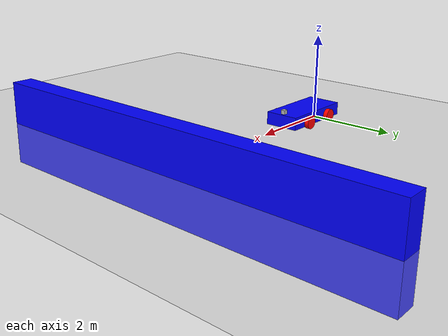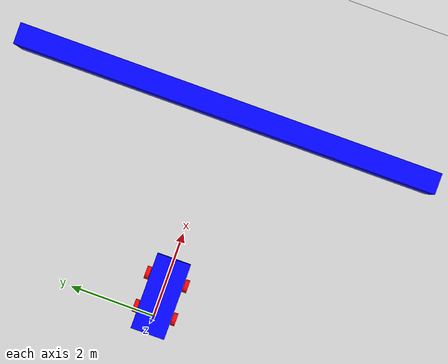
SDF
<?xml version="1.0" ?>
<sdf version="1.9">
    <world name="car_world">
        <physics name="1ms" type="ignored">
            <max_step_size>0.001</max_step_size>
            <real_time_factor>1.0</real_time_factor>
        </physics>
        <plugin
            filename="gz-sim-physics-system"
            name="gz::sim::systems::Physics">
        </plugin>
        <plugin
            filename="gz-sim-user-commands-system"
            name="gz::sim::systems::UserCommands">
        </plugin>
        <plugin
            filename="gz-sim-scene-broadcaster-system"
            name="gz::sim::systems::SceneBroadcaster">
        </plugin>

        <plugin filename="libignition-gazebo-imu-system.so"
                name="ignition::gazebo::systems::Imu">
        </plugin>

        <plugin filename="libignition-gazebo-contact-system.so"
            name="ignition::gazebo::systems::Contact">
        </plugin>

        <light type="directional" name="sun">
            <cast_shadows>true</cast_shadows>
            <pose>0 0 10 0 0 0</pose>
            <diffuse>0.8 0.8 0.8 1</diffuse>
            <specular>0.2 0.2 0.2 1</specular>
            <attenuation>
                <range>1000</range>
                <constant>0.9</constant>
                <linear>0.01</linear>
                <quadratic>0.001</quadratic>
            </attenuation>
            <direction>-0.5 0.1 -0.9</direction>
        </light>

        <model name="ground_plane">
            <static>true</static>
            <link name="link">
                <collision name="collision">
                <geometry>
                    <plane>
                    <normal>0 0 1</normal>
                    </plane>
                </geometry>
                </collision>
                <visual name="visual">
                <geometry>
                    <plane>
                    <normal>0 0 1</normal>
                    <size>100 100</size>
                    </plane>
                </geometry>
                <material>
                    <ambient>0.8 0.8 0.8 1</ambient>
                    <diffuse>0.8 0.8 0.8 1</diffuse>
                    <specular>0.8 0.8 0.8 1</specular>
                </material>
                </visual>
            </link>
        </model>
        <model name='vehicle_blue' canonical_link='chassis'>
            <pose relative_to='world'>0 0 0 0 0 0</pose>

            <frame name="lidar_frame" attached_to='chassis'>
                <pose>0.8 0 0.5 0 0 0</pose>
            </frame>

            <link name='chassis'>
                <pose relative_to='__model__'>0.5 0 0.2 0 0 0</pose>
                    <inertial> <!--inertial properties of the link mass, inertia matix-->
                        <mass>1.14395</mass>
                        <inertia>
                            <ixx>0.095329</ixx>
                            <ixy>0</ixy>
                            <ixz>0</ixz>
                            <iyy>0.381317</iyy>
                            <iyz>0</iyz>
                            <izz>0.476646</izz>
                        </inertia>
                    </inertial>
                    <visual name='visual'>
                        <geometry>
                            <box>
                                <size>1.8 0.8 0.3</size>
                            </box>
                        </geometry>
                        <!--let's add color to our link-->
                        <material>
                            <ambient>0.0 0.0 1.0 1</ambient>
                            <diffuse>0.0 0.0 1.0 1</diffuse>
                            <specular>0.0 0.0 1.0 1</specular>
                        </material>
                    </visual>
                    <collision name='collision'>
                        <geometry>
                            <box>
                                <size>1.8 0.8 0.3</size>
                            </box>
                        </geometry>
                    </collision>
                    <sensor name="imu_sensor" type="imu">
                        <always_on>1</always_on>
                        <update_rate>1</update_rate>
                        <visualize>true</visualize>
                        <topic>imu</topic>
                    </sensor>

                    <sensor name='gpu_lidar' type='gpu_lidar'>"
                        <pose relative_to='lidar_frame'>0 0 0 0 0 0</pose>
                        <topic>lidar</topic>
                        <update_rate>10</update_rate>
                        <ray>
                            <scan>
                                <horizontal>
                                    <samples>640</samples>
                                    <resolution>1</resolution>
                                    <min_angle>-1.396263</min_angle>
                                    <max_angle>1.396263</max_angle>
                                </horizontal>
                                <vertical>
                                    <samples>1</samples>
                                    <resolution>0.01</resolution>
                                    <min_angle>0</min_angle>
                                    <max_angle>0</max_angle>
                                </vertical>
                            </scan>
                            <range>
                                <min>0.08</min>
                                <max>10.0</max>
                                <resolution>0.01</resolution>
                            </range>
                        </ray>
                        <always_on>1</always_on>
                        <visualize>true</visualize>
                    </sensor>
                </link>

                <link name="camera_link">
                    <pose relative_to='chassis'>0.8 0.0 0.2 0 0 0</pose>
                    <inertial>
                        <mass>0.1</mass>
                        <inertia>
                            <ixx>0.000166667</ixx>
                            <iyy>0.000166667</iyy>
                            <izz>0.000166667</izz>
                        </inertia>
                    </inertial>

                    <collision name="collision">
                        <geometry>
                            <box>
                                <size>0.1 0.1 0.1</size>
                            </box>
                        </geometry>
                    </collision>
                    <visual name="visual">
                        <geometry>
                            <box>
                                <size>0.1 0.1 0.1</size>
                            </box>
                        </geometry>
                    </visual>

                    <sensor name="camera" type="camera">
                        <camera>
                            <horizontal_fov>1.047</horizontal_fov>
                            <image>
                                <width>380</width>
                                <height>240</height>
                            </image>
                            <clip>
                                <near>0.1</near>
                                <far>100</far>
                            </clip>
                        </camera>
                        <always_on>1</always_on>
                        <update_rate>30</update_rate>
                        <visualize>true</visualize>
                        <topic>camera</topic>
                    </sensor>
                </link>

                <joint name='camera' type='fixed'>
                    <parent>chassis</parent>
                    <child>camera_link</child>
                </joint>

                <link name='left_wheel1'>
                    <pose relative_to="chassis">-0.4 0.46 -0.05 -1.5707 0 0</pose>
                    <inertial>
                        <mass>1</mass>
                        <inertia>
                            <ixx>0.043333</ixx>
                            <ixy>0</ixy>
                            <ixz>0</ixz>
                            <iyy>0.043333</iyy>
                            <iyz>0</iyz>
                            <izz>0.08</izz>
                        </inertia>
                    </inertial>
                    <visual name='visual'>
                        <geometry>
                            <cylinder>
                                <radius>0.15</radius>
                                <length>0.10</length>
                            </cylinder>
                        </geometry>
                        <material>
                            <ambient>1.0 0.0 0.0 1</ambient>
                            <diffuse>1.0 0.0 0.0 1</diffuse>
                            <specular>1.0 0.0 0.0 1</specular>
                        </material>
                    </visual>
                    <collision name='collision'>
                        <geometry>
                            <cylinder>
                                <radius>0.15</radius>
                                <length>0.10</length>
                            </cylinder>
                        </geometry>
                    </collision>
                </link>

                <!--The same as left wheel but with different position-->
                <link name='right_wheel1'>
                    <pose relative_to="chassis">-0.4 -0.46 -0.05 -1.5707 0 0</pose> <!--angles are in radian-->
                    <inertial>
                        <mass>1</mass>
                        <inertia>
                            <ixx>0.043333</ixx>
                            <ixy>0</ixy>
                            <ixz>0</ixz>
                            <iyy>0.043333</iyy>
                            <iyz>0</iyz>
                            <izz>0.08</izz>
                        </inertia>
                    </inertial>
                    <visual name='visual'>
                        <geometry>
                            <cylinder>
                                <radius>0.15</radius>
                                <length>0.10</length>
                            </cylinder>
                        </geometry>
                        <material>
                            <ambient>1.0 0.0 0.0 1</ambient>
                            <diffuse>1.0 0.0 0.0 1</diffuse>
                            <specular>1.0 0.0 0.0 1</specular>
                        </material>
                    </visual>
                    <collision name='collision'>
                        <geometry>
                            <cylinder>
                                <radius>0.15</radius>
                                <length>0.10</length>
                            </cylinder>
                        </geometry>
                    </collision>
                </link>

                <link name='right_wheel2'>
                    <pose relative_to="chassis">0.4 -0.46 -0.05 -1.5707 0 0</pose> <!--angles are in radian-->
                    <inertial>
                        <mass>1</mass>
                        <inertia>
                            <ixx>0.043333</ixx>
                            <ixy>0</ixy>
                            <ixz>0</ixz>
                            <iyy>0.043333</iyy>
                            <iyz>0</iyz>
                            <izz>0.08</izz>
                        </inertia>
                    </inertial>
                    <visual name='visual'>
                        <geometry>
                            <cylinder>
                                <radius>0.15</radius>
                                <length>0.10</length>
                            </cylinder>
                        </geometry>
                        <material>
                            <ambient>1.0 0.0 0.0 1</ambient>
                            <diffuse>1.0 0.0 0.0 1</diffuse>
                            <specular>1.0 0.0 0.0 1</specular>
                        </material>
                    </visual>
                    <collision name='collision'>
                        <geometry>
                            <cylinder>
                                <radius>0.15</radius>
                                <length>0.10</length>
                            </cylinder>
                        </geometry>
                    </collision>
                </link>

                <link name='left_wheel2'>
                    <pose relative_to="chassis">0.4 0.46 -0.05 -1.5707 0 0</pose> <!--angles are in radian-->
                    <inertial>
                        <mass>1</mass>
                        <inertia>
                            <ixx>0.043333</ixx>
                            <ixy>0</ixy>
                            <ixz>0</ixz>
                            <iyy>0.043333</iyy>
                            <iyz>0</iyz>
                            <izz>0.08</izz>
                        </inertia>
                    </inertial>
                    <visual name='visual'>
                        <geometry>
                            <cylinder>
                                <radius>0.15</radius>
                                <length>0.10</length>
                            </cylinder>
                        </geometry>
                        <material>
                            <ambient>1.0 0.0 0.0 1</ambient>
                            <diffuse>1.0 0.0 0.0 1</diffuse>
                            <specular>1.0 0.0 0.0 1</specular>
                        </material>
                    </visual>
                    <collision name='collision'>
                        <geometry>
                            <cylinder>
                                <radius>0.15</radius>
                                <length>0.10</length>
                            </cylinder>
                        </geometry>
                    </collision>
                </link>

                <joint name='left_wheel1_joint' type='revolute'>
                    <pose relative_to='left_wheel1'/>
                    <parent>chassis</parent>
                    <child>left_wheel1</child>
                    <axis>
                        <xyz expressed_in='__model__'>0 1 0</xyz> <!--can be defined as any frame or even arbitrary frames-->
                        <limit>
                            <lower>-1.79769e+308</lower>    <!--negative infinity-->
                            <upper>1.79769e+308</upper>     <!--positive infinity-->
                        </limit>
                    </axis>
                </joint>

                <joint name='left_wheel2_joint' type='revolute'>
                    <pose relative_to='left_wheel2'/>
                    <parent>chassis</parent>
                    <child>left_wheel2</child>
                    <axis>
                        <xyz expressed_in='__model__'>0 1 0</xyz> <!--can be defined as any frame or even arbitrary frames-->
                        <limit>
                            <lower>-1.79769e+308</lower>    <!--negative infinity-->
                            <upper>1.79769e+308</upper>     <!--positive infinity-->
                        </limit>
                    </axis>
                </joint>

                <joint name='right_wheel1_joint' type='revolute'>
                    <pose relative_to='right_wheel1'/>
                    <parent>chassis</parent>
                    <child>right_wheel1</child>
                    <axis>
                        <xyz expressed_in='__model__'>0 1 0</xyz>
                        <limit>
                            <lower>-1.79769e+308</lower>    <!--negative infinity-->
                            <upper>1.79769e+308</upper>     <!--positive infinity-->
                        </limit>
                    </axis>
                </joint>

                <joint name='right_wheel2_joint' type='revolute'>
                    <pose relative_to='right_wheel2'/>
                    <parent>chassis</parent>
                    <child>right_wheel2</child>
                    <axis>
                        <xyz expressed_in='__model__'>0 1 0</xyz>
                        <limit>
                            <lower>-1.79769e+308</lower>    <!--negative infinity-->
                            <upper>1.79769e+308</upper>     <!--positive infinity-->
                        </limit>
                    </axis>
                </joint>

                <plugin
    		    filename="libignition-gazebo-diff-drive-system.so"
    		    name="ignition::gazebo::systems::DiffDrive">
    		    <left_joint>left_wheel1_joint</left_joint>
		    <left_joint>left_wheel2_joint</left_joint>
		    <right_joint>right_wheel1_joint</right_joint>
		    <right_joint>right_wheel2_joint</right_joint>
		    <wheel_separation>0.92</wheel_separation>
		    <wheel_radius>0.15</wheel_radius>
		    <odom_publish_frequency>30</odom_publish_frequency>
		    <topic>cmd_vel</topic>
		    <odom_topic>odom</odom_topic>
		    <odom_frame>odom</odom_frame>
		    <base_frame>chassis</base_frame> <!-- ou base_link, se for seu frame principal -->
		    <publish_tf>true</publish_tf>
		</plugin>

            </model>

            <model name='wall'>
                <static>true</static>
                <pose>5 0 0 0 0 0</pose><!--pose relative to the world-->
                <link name='box'>
                    <pose/>
                    <visual name='visual'>
                        <geometry>
                            <box>
                                <size>0.5 10.0 2.0</size>
                            </box>
                        </geometry>
                        <!--let's add color to our link-->
                        <material>
                            <ambient>0.0 0.0 1.0 1</ambient>
                            <diffuse>0.0 0.0 1.0 1</diffuse>
                            <specular>0.0 0.0 1.0 1</specular>
                        </material>
                    </visual>
                    <collision name='collision'>
                        <geometry>
                            <box>
                                <size>0.5 10.0 2.0</size>
                            </box>
                        </geometry>
                    </collision>
                    <sensor name='sensor_contact' type='contact'>
                        <contact>
                            <collision>collision</collision>
                        </contact>
                    </sensor>
                </link>
                <plugin filename="libignition-gazebo-touchplugin-system.so"
                        name="ignition::gazebo::systems::TouchPlugin">
                    <target>vehicle_blue</target>
                    <namespace>wall</namespace>
                    <time>0.001</time>
                    <enabled>true</enabled>
                </plugin>
            </model>

            <!-- Moving Forward-->
        <plugin filename="ignition-gazebo-triggered-publisher-system"
                name="ignition::gazebo::systems::TriggeredPublisher">
            <input type="ignition.msgs.Int32" topic="/keyboard/keypress">
                <match field="data">16777235</match>
            </input>
            <output type="ignition.msgs.Twist" topic="/cmd_vel">
                linear: {x: 0.5}, angular: {z: 0.0}
            </output>
        </plugin>

        <!-- Moving Backward-->
        <plugin filename="ignition-gazebo-triggered-publisher-system"
                name="ignition::gazebo::systems::TriggeredPublisher">
            <input type="ignition.msgs.Int32" topic="/keyboard/keypress">
                <match field="data">16777237</match>
            </input>
            <output type="ignition.msgs.Twist" topic="/cmd_vel">
                linear: {x: -0.5}, angular: {z: 0.0}
            </output>
        </plugin>

        <!-- Rotating right-->
        <plugin filename="ignition-gazebo-triggered-publisher-system"
                name="ignition::gazebo::systems::TriggeredPublisher">
            <input type="ignition.msgs.Int32" topic="/keyboard/keypress">
                <match field="data">16777236</match>
            </input>
            <output type="ignition.msgs.Twist" topic="/cmd_vel">
                linear: {x: 0.0}, angular: {z: -0.5}
            </output>
        </plugin>

        <!--Rotating left-->
        <plugin filename="ignition-gazebo-triggered-publisher-system"
                name="ignition::gazebo::systems::TriggeredPublisher">
            <input type="ignition.msgs.Int32" topic="/keyboard/keypress">
                <match field="data">16777234</match>
            </input>
            <output type="ignition.msgs.Twist" topic="/cmd_vel">
                linear: {x: 0.0}, angular: {z: 0.5}
            </output>
        </plugin>

        <!--stop when hit the wall-->
        <plugin filename="ignition-gazebo-triggered-publisher-system"
                name="ignition::gazebo::systems::TriggeredPublisher">
            <input type="ignition.msgs.Boolean" topic="/wall/touched">
                <match>data: true</match>
            </input>
            <output type="ignition.msgs.Twist" topic="/cmd_vel">
                linear: {x: 0.0}, angular: {z: 0.0}
            </output>
        </plugin>

        <plugin
        filename="libignition-gazebo-sensors-system.so"
        name="ignition::gazebo::systems::Sensors">
        <render_engine>ogre2</render_engine>
      </plugin>

    </world>
</sdf>
